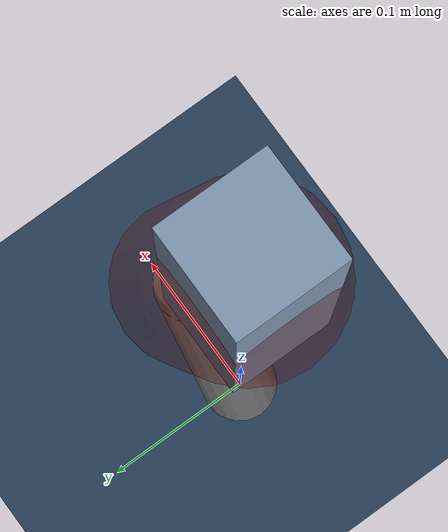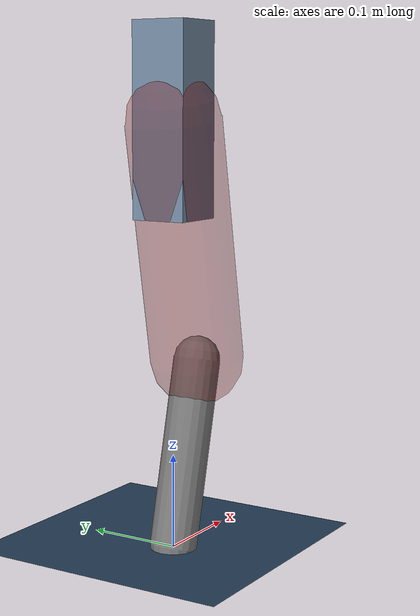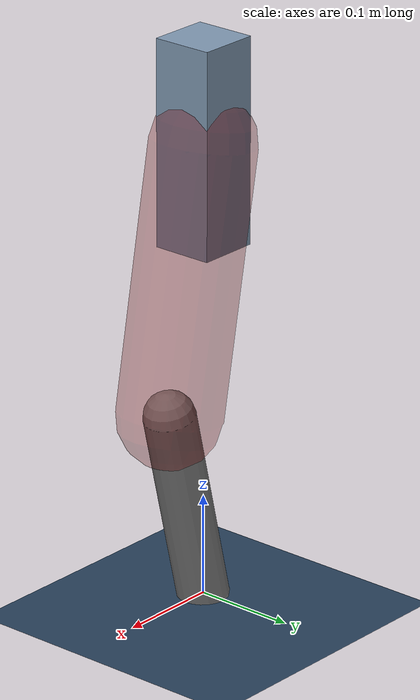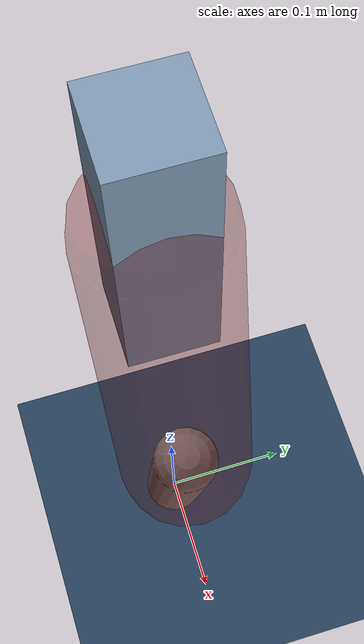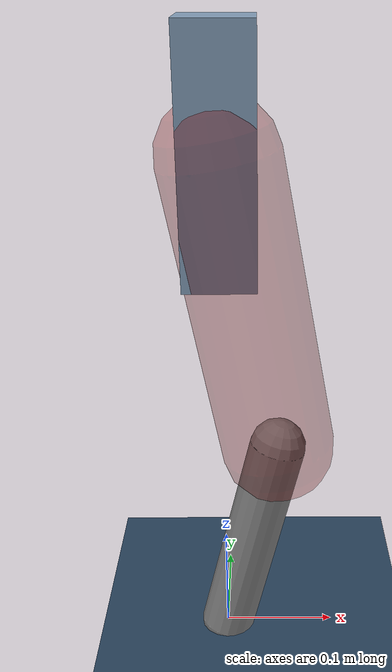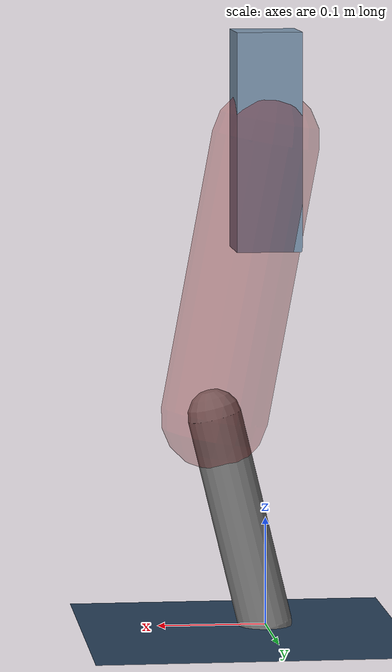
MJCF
<mujoco model="Hopper2D">
	<compiler inertiafromgeom="true" angle="radian" />
	<option timestep="0.001" integrator="implicit" cone="elliptic" solver="Newton" tolerance="1e-10" />

	<default>
		<geom contype="1" conaffinity="1" condim="3" friction="2 0.005 0.0001" solref="0.005 1" />
		<joint limited="true" damping="0.1" />
	</default>

	<asset>
		<texture name="skybox" type="skybox" builtin="gradient" rgb1=".4 .6 .8" rgb2="0 0 0" width="800" height="800" />
		<texture name="grid" type="2d" builtin="checker" rgb1=".1 .2 .3" rgb2=".2 .3 .4" width="300" height="300" mark="edge" markrgb=".2 .3 .4" />
		<material name="ground" texture="grid" texrepeat="1 1" texuniform="true" reflectance="0.1" />
		<material name="leg" rgba="0.5 0.6 0.7 1" />
	</asset>

	<worldbody>

		<geom name="floor" type="plane" size="5 5 0.25" material="ground" />

		<light directional="false" diffuse="0.8 0.8 0.8" specular="0.3 0.3 0.3" pos="0 0 2" dir="0 0 -1" />
		<light mode="targetbodycom" target="base" directional="false" diffuse="0.8 0.8 0.8" specular="0.3 0.3 0.3" pos="0 0 2" dir="0 0 -1" />

		<camera name="fixed" pos="0 -2 1" xyaxes="1 0 0 0 0 1" />
		<camera name="tracking" mode="trackcom" pos="0 -3 1" />

		<body name="root" pos="0 0 0.4494316142861926">
			<joint name="slide_x" type="slide" axis="1 0 0" range="-100 100" />
			<joint name="slide_z" type="slide" axis="0 0 1" range="0 10" />

			<body name="base" pos="0 0 0">
				<geom name="torso" type="box" size="0.03 0.03 0.1" mass="2.385" material="leg" />

				<body name="link1" pos="0 0 0" euler="0 1.3866308523431716 0">
					<joint type="hinge" axis="0 -1 0" pos="0 0 0" name="hinge1" limited="true" range="-3.14 3.14" stiffness="0" damping="0.1" />
					<geom name="thigh" type="capsule" fromto="0 0 0 0.25819756743029765 0 0" size="0.05" rgba="0.5 0 0 0.3" mass="0.8777136753187739" />

					<body name="link2" pos="0.25819756743029765 0 0" euler="0 0.4213468965854709 0">
						<joint type="hinge" axis="0 -1 0" pos="0 0 0" name="hinge2" limited="true" range="-3.14 3.14" stiffness="0" damping="0.1" />
						<geom name="shank" type="capsule" fromto="0 0 0 0.20123404685589497 0 0" size="0.025" mass="0.4019106421703055" />

					</body>
				</body>
			</body>
		</body>
	</worldbody>

	<actuator>
		<motor name="torque1" joint="hinge1" ctrlrange="-62.81356138500279 62.81356138500279" ctrllimited="true" gear="1" />
		<motor name="torque2" joint="hinge2" ctrlrange="-81.80847075535006 81.80847075535006" ctrllimited="true" gear="1" />
	</actuator>
</mujoco>
